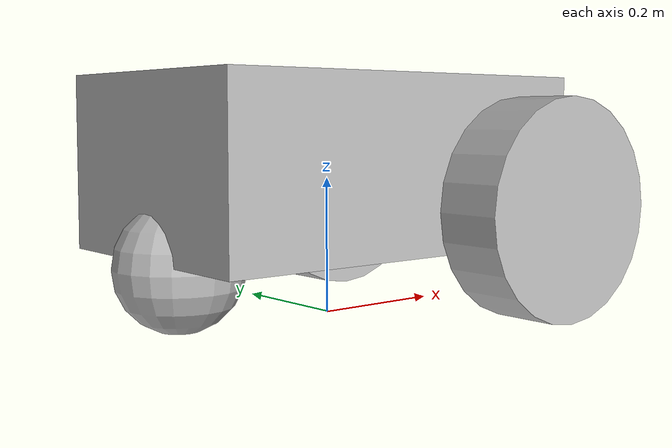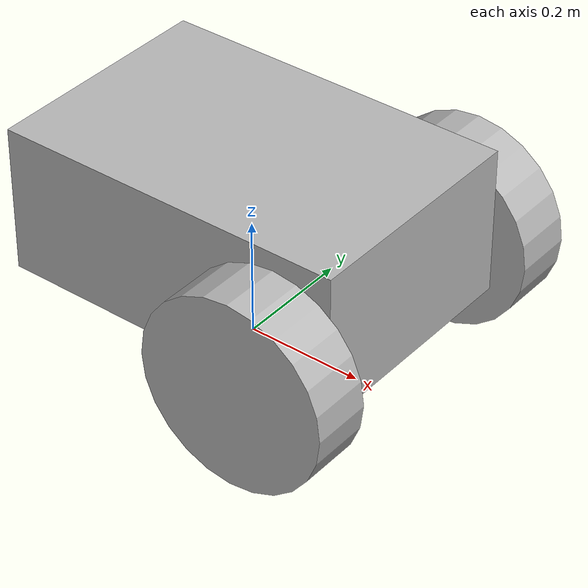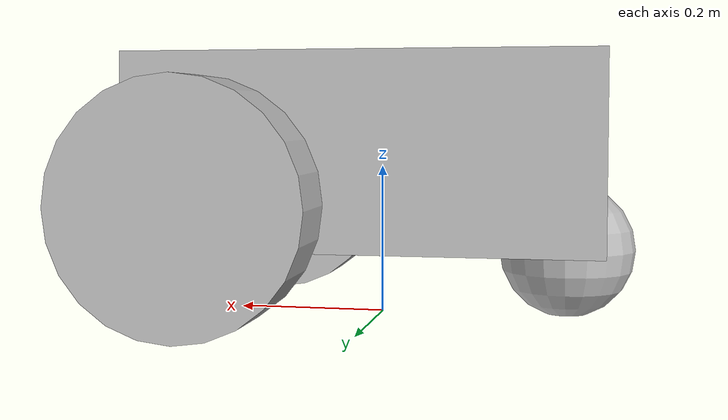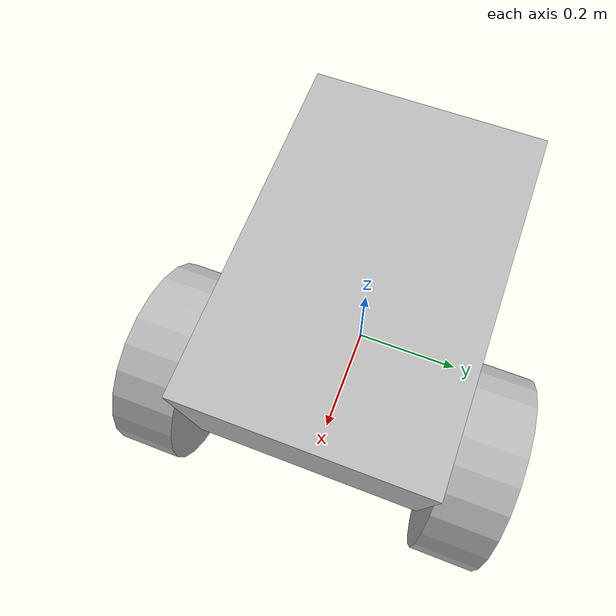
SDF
<?xml version="1.0"?>

<sdf version="1.6">
    <model name="ISR_M2">
        <pose>0.0 0.0 0.0 0.0 0.0 0.0</pose>

        <link name='chassis'>
            <pose>0.0 0.0 0.225 0.0 0.0 0.0 0.0</pose>
            <inertial>
                <mass>1</mass>
                <inertia>
                    <ixx>0.166667</ixx>
                    <ixy>0.0</ixy>
                    <ixz>0.0</ixz>
                    <iyy>0.166667</iyy>
                    <iyz>0.0</iyz>
                    <izz>0.166667</izz>
                </inertia>
            </inertial>
            <visual name='visual'>
                <geometry>
                    <box>
                        <size>0.6 0.4 0.25</size>
                    </box>
                </geometry>
            </visual>
            <collision name='collision'>
                <geometry>
                    <box>
                        <size>0.6 0.4 0.25</size>
                    </box>
                </geometry>
            </collision>
        </link>

        <link name='left_wheel'>
            <pose>0.2 0.25 0.16 1.5707 0 0</pose>
            <inertial>
                <mass>1</mass>
                <inertia>
                    <ixx>0.145833</ixx>
                    <ixy>0</ixy>
                    <ixz>0</ixz>
                    <iyy>0.145833</iyy>
                    <iyz>0</iyz>
                    <izz>0.125</izz>
                </inertia>
            </inertial>
            <visual name='visual'>
                <geometry>
                    <cylinder>
                        <radius>0.16</radius>
                        <length>0.10</length>
                    </cylinder>
                </geometry>
            </visual>
            <collision name='collision'>
                <geometry>
                    <cylinder>
                        <radius>0.16</radius>
                        <length>0.10</length>
                    </cylinder>
                </geometry>
                <surface>
                    <friction>
                        <ode>
                            <mu>1</mu>
                            <mu2>1</mu2>
                            <slip1>0</slip1>
                            <slip2>0</slip2>
                        </ode>
                    </friction>
                    <contact>
                        <ode>
                            <soft_cfm>0</soft_cfm>
                            <soft_erp>0.2</soft_erp>
                            <kp>1e+13</kp>
                            <kd>1</kd>
                            <max_vel>0.01</max_vel>
                            <min_depth>0.01</min_depth>
                        </ode>
                    </contact>
                </surface>
            </collision>
        </link>

        <link name='right_wheel'>
            <pose>0.2 -0.25 0.16 1.5707 0 0</pose>
            <inertial>
                <mass>1</mass>
                <inertia>
                    <ixx>0.145833</ixx>
                    <ixy>0</ixy>
                    <ixz>0</ixz>
                    <iyy>0.145833</iyy>
                    <iyz>0</iyz>
                    <izz>0.125</izz>
                </inertia>
            </inertial>
            <visual name='visual'>
                <geometry>
                    <cylinder>
                        <radius>0.16</radius>
                        <length>0.10</length>
                    </cylinder>
                </geometry>
            </visual>
            <collision name='collision'>
                <geometry>
                    <cylinder>
                        <radius>0.16</radius>
                        <length>0.10</length>
                    </cylinder>
                </geometry>
                <surface>
                    <friction>
                        <ode>
                            <mu>1</mu>
                            <mu2>1</mu2>
                            <slip1>0</slip1>
                            <slip2>0</slip2>
                        </ode>
                    </friction>
                    <contact>
                        <ode>
                            <soft_cfm>0</soft_cfm>
                            <soft_erp>0.2</soft_erp>
                            <kp>1e+13</kp>
                            <kd>1</kd>
                            <max_vel>0.01</max_vel>
                            <min_depth>0.01</min_depth>
                        </ode>
                    </contact>
                </surface>
            </collision>
        </link>

        <link name='caster'>
            <pose>-0.25 0 0.09 0 -0 0</pose>
            <inertial>
                <mass>1</mass>
                <inertia>
                    <ixx>0.1</ixx>
                    <ixy>0</ixy>
                    <ixz>0</ixz>
                    <iyy>0.1</iyy>
                    <iyz>0</iyz>
                    <izz>0.1</izz>
                </inertia>
            </inertial>
            <visual name='visual'>
                <geometry>
                    <sphere>
                        <radius>0.09</radius>
                    </sphere>
                </geometry>
            </visual>
            <collision name='collision'>
                <geometry>
                    <sphere>
                        <radius>0.09</radius>
                    </sphere>
                </geometry>
            </collision>
        </link>

        <joint name='left_wheel_joint' type='revolute'>
            <parent>chassis</parent>
            <child>left_wheel</child>
            <axis>
                <xyz>0 0 -1</xyz>
                <limit>
                    <lower>-1.79769e+308</lower>
                    <upper>1.79769e+308</upper>
                </limit>
            </axis>
        </joint>

        <joint name='right_wheel_joint' type='revolute'>
            <parent>chassis</parent>
            <child>right_wheel</child>
            <axis>
                <xyz>0 0 -1</xyz>
                <limit>
                    <lower>-1.79769e+308</lower>
                    <upper>1.79769e+308</upper>
                </limit>
            </axis>
        </joint>

        <joint name='caster_wheel' type='ball'>
            <parent>chassis</parent>
            <child>caster</child>
        </joint>

        <plugin name='diff_drive' filename='libgazebo_ros_diff_drive.so'>

            <!-- wheels -->
            <left_joint>left_wheel_joint</left_joint>
            <right_joint>right_wheel_joint</right_joint>

            <!-- kinematics -->
            <wheel_separation>0.5</wheel_separation>
            <wheel_diameter>0.32</wheel_diameter>

            <!-- limits -->
            <max_wheel_torque>20</max_wheel_torque>
            <max_wheel_acceleration>1.0</max_wheel_acceleration>

            <!-- output -->
            <publish_odom>true</publish_odom>
            <publish_odom_tf>true</publish_odom_tf>
            <publish_wheel_tf>true</publish_wheel_tf>

            <odometry_frame>odom_demo</odometry_frame>
            <robot_base_frame>chassis</robot_base_frame>

        </plugin>

    </model>
</sdf>
